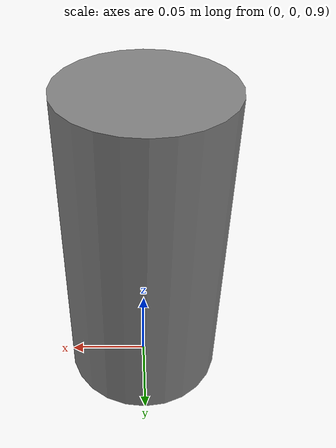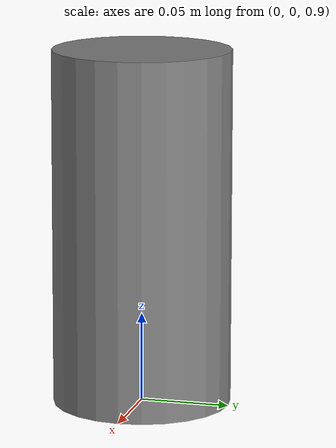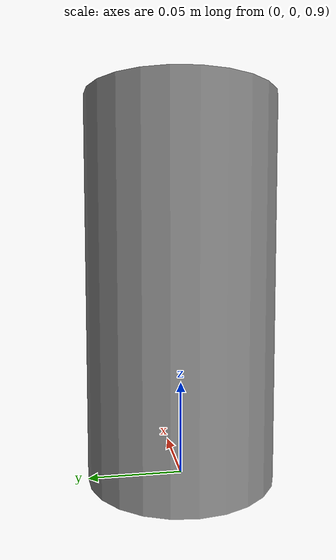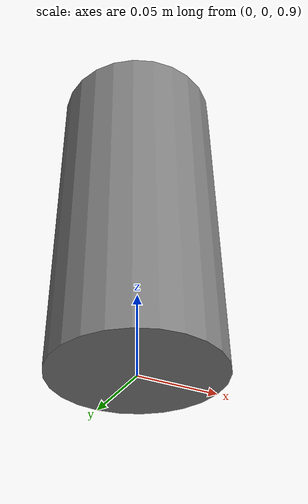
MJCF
<!--
 MuJoCo MJCF test file. See http://mujoco.org/book/index.html
  -->
<mujoco>
   <worldbody>
      <light diffuse=".5 .5 .5" pos="0 0 3" dir="0 0 -1"/>
      <geom type="plane" size="1 1 0.1" rgba=".9 0 0 1"/>
      <body pos="0 0 1">
         <joint type="free"/>
         <geom fromto="0.0 0.0 -0.1 0.0 0.0 0.1" name="aux_1_geom" size="0.05" type="cylinder"/>
      </body>
   </worldbody>
</mujoco>
